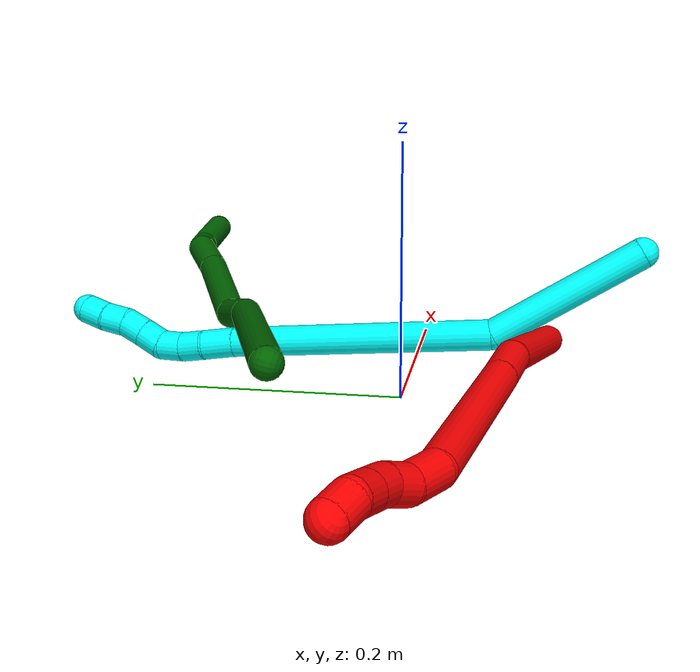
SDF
<sdf version="1.7">
 <world name="default">
  <model name="photoneo_s_sensor">
   <static>1</static>
   <pose>0 0 2 1.57079 1.57079 3.14159</pose>
   <link name="link">
    <inertial><mass>0.1</mass></inertial>
    <sensor name="sensor" type="depth">
     <update_rate>30</update_rate>
     <camera>
      <horizontal_fov>1.22</horizontal_fov>
      <image><width>1920</width><height>1200</height><format>B8G8R8</format></image>
      <clip><near>0.1</near><far>2</far></clip>
      <depth_camera><output>points</output></depth_camera>
     </camera>
     <plugin name="camera_plugin" filename="libgazebo_ros_depth_camera.so">
      <baseline>0.2</baseline>
      <alwaysOn>1</alwaysOn>
      <updateRate>0.0</updateRate>
      <cameraName>camera_ir</cameraName>
      <imageTopicName>/camera/color/image_raw</imageTopicName>
      <cameraInfoTopicName>/camera/color/camera_info</cameraInfoTopicName>
      <depthImageTopicName>/camera/depth/image_raw</depthImageTopicName>
      <depthImageCameraInfoTopicName>/camera/depth/camera_info</depthImageCameraInfoTopicName>
      <pointCloudTopicName>/camera/depth/points</pointCloudTopicName>
      <frameName>fr_optical</frameName>
      <pointCloudCutoff>0.1</pointCloudCutoff>
      <pointCloudCutoffMax>2.0</pointCloudCutoffMax>
      <distortionK1>0</distortionK1>
      <distortionK2>0</distortionK2>
      <distortionK3>0</distortionK3>
      <distortionT1>0</distortionT1>
      <distortionT2>0</distortionT2>
      <CxPrime>0</CxPrime>
      <Cx>0</Cx>
      <Cy>0</Cy>
      <focalLength>0</focalLength>
      <hackBaseline>0</hackBaseline>
     </plugin>
    </sensor>
   </link>
  </model>
  <model name="bin">
   <static>1</static>
   <link name="bottom">
    <collision name="collision-bottom">
     <pose>0 0 -0.01 0 -0 0</pose>
     <geometry><box><size>0.8 0.6 0.02</size></box></geometry>
     <surface>
      <friction><ode><mu>100</mu><mu2>100</mu2></ode></friction>
      <contact><collide_bitmask>65535</collide_bitmask></contact>
     </surface>
    </collision>
   </link>
   <link name="west_wall">
    <collision name="collision-west_wall">
     <pose>-0.41 0 0.1 0 -0 0</pose>
     <geometry><box><size>0.02 0.6 0.2</size></box></geometry>
     <surface>
      <friction><ode><mu>100</mu><mu2>100</mu2></ode></friction>
      <contact><collide_bitmask>65535</collide_bitmask></contact>
     </surface>
    </collision>
   </link>
   <link name="east_wall">
    <collision name="collision-east_wall">
     <pose>0.41 0 0.1 0 -0 0</pose>
     <geometry><box><size>0.02 0.6 0.2</size></box></geometry>
     <surface>
      <friction><ode><mu>100</mu><mu2>100</mu2></ode></friction>
      <contact><collide_bitmask>65535</collide_bitmask></contact>
     </surface>
    </collision>
   </link>
   <link name="south_wall">
    <collision name="collision-south_wall">
     <pose>0 -0.31 0.1 0 -0 0</pose>
     <geometry><box><size>0.8 0.02 0.2</size></box></geometry>
     <surface>
      <friction><ode><mu>100</mu><mu2>100</mu2></ode></friction>
      <contact><collide_bitmask>65535</collide_bitmask></contact>
     </surface>
    </collision>
   </link>
   <link name="north_wall">
    <collision name="collision-north_wall">
     <pose>0 0.31 0.1 0 -0 0</pose>
     <geometry><box><size>0.8 0.02 0.2</size></box></geometry>
     <surface>
      <friction><ode><mu>100</mu><mu2>100</mu2></ode></friction>
      <contact><collide_bitmask>65535</collide_bitmask></contact>
     </surface>
    </collision>
   </link>
  </model>
  <model name="2">
   <static>0</static>
   <link name="2">
    <collision name="collision-cylinder-e_1_1_4">
     <pose>-0.071743 -0.019403 0.045704 0.401486 -0.965406 -0.212469</pose>
     <geometry><cylinder><radius>0.0125</radius><length>0.174499</length></cylinder></geometry>
     <surface>
      <friction><ode><mu>1.16</mu><mu2>1.16</mu2><slip1>0</slip1><slip2>0</slip2></ode></friction>
      <contact><ode><kp>1e+06</kp><kd>1</kd><max_vel>0</max_vel><min_depth>0.001</min_depth></ode></contact>
     </surface>
    </collision>
    <visual name="visual-cylinder-e_1_1_4">
     <pose>-0.071743 -0.019403 0.045704 0.401486 -0.965406 -0.212469</pose>
     <geometry><cylinder><radius>0.0125</radius><length>0.174499</length></cylinder></geometry>
     <material><ambient>1 0 0 1</ambient></material>
    </visual>
    <collision name="collision-cylinder-e_2_4_5">
     <pose>-0.164236 -0.048469 0.101651 0.756243 -0.97455 -0.414928</pose>
     <geometry><cylinder><radius>0.0125</radius><length>0.050152</length></cylinder></geometry>
     <surface>
      <friction><ode><mu>1.16</mu><mu2>1.16</mu2><slip1>0</slip1><slip2>0</slip2></ode></friction>
      <contact><ode><kp>1e+06</kp><kd>1</kd><max_vel>0</max_vel><min_depth>0.001</min_depth></ode></contact>
     </surface>
    </collision>
    <visual name="visual-cylinder-e_2_4_5">
     <pose>-0.164236 -0.048469 0.101651 0.756243 -0.97455 -0.414928</pose>
     <geometry><cylinder><radius>0.0125</radius><length>0.050152</length></cylinder></geometry>
     <material><ambient>1 0 0 1</ambient></material>
    </visual>
    <collision name="collision-cylinder-e_3_5_6">
     <pose>-0.255069 -0.08991 0.143219 0.792581 -1.00384 -0.451436</pose>
     <geometry><cylinder><radius>0.0125</radius><length>0.166167</length></cylinder></geometry>
     <surface>
      <friction><ode><mu>1.16</mu><mu2>1.16</mu2><slip1>0</slip1><slip2>0</slip2></ode></friction>
      <contact><ode><kp>1e+06</kp><kd>1</kd><max_vel>0</max_vel><min_depth>0.001</min_depth></ode></contact>
     </surface>
    </collision>
    <visual name="visual-cylinder-e_3_5_6">
     <pose>-0.255069 -0.08991 0.143219 0.792581 -1.00384 -0.451436</pose>
     <geometry><cylinder><radius>0.0125</radius><length>0.166167</length></cylinder></geometry>
     <material><ambient>1 0 0 1</ambient></material>
    </visual>
    <collision name="collision-cylinder-e_4_6_7">
     <pose>-0.339154 -0.12413 0.176863 0.811052 -1.3347 -0.652401</pose>
     <geometry><cylinder><radius>0.0125</radius><length>0.0288</length></cylinder></geometry>
     <surface>
      <friction><ode><mu>1.16</mu><mu2>1.16</mu2><slip1>0</slip1><slip2>0</slip2></ode></friction>
      <contact><ode><kp>1e+06</kp><kd>1</kd><max_vel>0</max_vel><min_depth>0.001</min_depth></ode></contact>
     </surface>
    </collision>
    <visual name="visual-cylinder-e_4_6_7">
     <pose>-0.339154 -0.12413 0.176863 0.811052 -1.3347 -0.652401</pose>
     <geometry><cylinder><radius>0.0125</radius><length>0.0288</length></cylinder></geometry>
     <material><ambient>1 0 0 1</ambient></material>
    </visual>
    <collision name="collision-cylinder-e_5_7_8">
     <pose>-0.362784 -0.125233 0.182002 -0.443393 -1.25739 0.324898</pose>
     <geometry><cylinder><radius>0.0125</radius><length>0.020245</length></cylinder></geometry>
     <surface>
      <friction><ode><mu>1.16</mu><mu2>1.16</mu2><slip1>0</slip1><slip2>0</slip2></ode></friction>
      <contact><ode><kp>1e+06</kp><kd>1</kd><max_vel>0</max_vel><min_depth>0.001</min_depth></ode></contact>
     </surface>
    </collision>
    <visual name="visual-cylinder-e_5_7_8">
     <pose>-0.362784 -0.125233 0.182002 -0.443393 -1.25739 0.324898</pose>
     <geometry><cylinder><radius>0.0125</radius><length>0.020245</length></cylinder></geometry>
     <material><ambient>1 0 0 1</ambient></material>
    </visual>
    <collision name="collision-cylinder-e_6_8_9">
     <pose>-0.381548 -0.125429 0.18874 0.373136 -1.13915 -0.240588</pose>
     <geometry><cylinder><radius>0.0125</radius><length>0.020116</length></cylinder></geometry>
     <surface>
      <friction><ode><mu>1.16</mu><mu2>1.16</mu2><slip1>0</slip1><slip2>0</slip2></ode></friction>
      <contact><ode><kp>1e+06</kp><kd>1</kd><max_vel>0</max_vel><min_depth>0.001</min_depth></ode></contact>
     </surface>
    </collision>
    <visual name="visual-cylinder-e_6_8_9">
     <pose>-0.381548 -0.125429 0.18874 0.373136 -1.13915 -0.240588</pose>
     <geometry><cylinder><radius>0.0125</radius><length>0.020116</length></cylinder></geometry>
     <material><ambient>1 0 0 1</ambient></material>
    </visual>
    <collision name="collision-cylinder-e_7_9_10">
     <pose>-0.399549 -0.128591 0.196999 0.358864 -1.08893 -0.218784</pose>
     <geometry><cylinder><radius>0.0125</radius><length>0.020008</length></cylinder></geometry>
     <surface>
      <friction><ode><mu>1.16</mu><mu2>1.16</mu2><slip1>0</slip1><slip2>0</slip2></ode></friction>
      <contact><ode><kp>1e+06</kp><kd>1</kd><max_vel>0</max_vel><min_depth>0.001</min_depth></ode></contact>
     </surface>
    </collision>
    <visual name="visual-cylinder-e_7_9_10">
     <pose>-0.399549 -0.128591 0.196999 0.358864 -1.08893 -0.218784</pose>
     <geometry><cylinder><radius>0.0125</radius><length>0.020008</length></cylinder></geometry>
     <material><ambient>1 0 0 1</ambient></material>
    </visual>
    <collision name="collision-cylinder-e_8_10_2">
     <pose>-0.417678 -0.133895 0.202224 1.33468 -1.1833 -0.973857</pose>
     <geometry><cylinder><radius>0.0125</radius><length>0.020013</length></cylinder></geometry>
     <surface>
      <friction><ode><mu>1.16</mu><mu2>1.16</mu2><slip1>0</slip1><slip2>0</slip2></ode></friction>
      <contact><ode><kp>1e+06</kp><kd>1</kd><max_vel>0</max_vel><min_depth>0.001</min_depth></ode></contact>
     </surface>
    </collision>
    <visual name="visual-cylinder-e_8_10_2">
     <pose>-0.417678 -0.133895 0.202224 1.33468 -1.1833 -0.973857</pose>
     <geometry><cylinder><radius>0.0125</radius><length>0.020013</length></cylinder></geometry>
     <material><ambient>1 0 0 1</ambient></material>
    </visual>
    <collision name="collision-sphere-2">
     <pose>-0.426943 -0.137572 0.203109 0 -0 0</pose>
     <geometry><sphere><radius>0.0125</radius></sphere></geometry>
     <surface>
      <friction><ode><mu>1.16</mu><mu2>1.16</mu2><slip1>0</slip1><slip2>0</slip2></ode></friction>
      <contact><ode><kp>1e+06</kp><kd>1</kd><max_vel>0</max_vel><min_depth>0.001</min_depth></ode></contact>
     </surface>
    </collision>
    <visual name="visual-sphere-2">
     <pose>-0.426943 -0.137572 0.203109 0 -0 0</pose>
     <geometry><sphere><radius>0.0125</radius></sphere></geometry>
     <material><ambient>1 0 0 1</ambient></material>
    </visual>
    <collision name="collision-sphere-10">
     <pose>-0.408414 -0.130219 0.20134 0 -0 0</pose>
     <geometry><sphere><radius>0.0125</radius></sphere></geometry>
     <surface>
      <friction><ode><mu>1.16</mu><mu2>1.16</mu2><slip1>0</slip1><slip2>0</slip2></ode></friction>
      <contact><ode><kp>1e+06</kp><kd>1</kd><max_vel>0</max_vel><min_depth>0.001</min_depth></ode></contact>
     </surface>
    </collision>
    <visual name="visual-sphere-10">
     <pose>-0.408414 -0.130219 0.20134 0 -0 0</pose>
     <geometry><sphere><radius>0.0125</radius></sphere></geometry>
     <material><ambient>1 0 0 1</ambient></material>
    </visual>
    <collision name="collision-sphere-9">
     <pose>-0.390684 -0.126963 0.192658 0 -0 0</pose>
     <geometry><sphere><radius>0.0125</radius></sphere></geometry>
     <surface>
      <friction><ode><mu>1.16</mu><mu2>1.16</mu2><slip1>0</slip1><slip2>0</slip2></ode></friction>
      <contact><ode><kp>1e+06</kp><kd>1</kd><max_vel>0</max_vel><min_depth>0.001</min_depth></ode></contact>
     </surface>
    </collision>
    <visual name="visual-sphere-9">
     <pose>-0.390684 -0.126963 0.192658 0 -0 0</pose>
     <geometry><sphere><radius>0.0125</radius></sphere></geometry>
     <material><ambient>1 0 0 1</ambient></material>
    </visual>
    <collision name="collision-sphere-4">
     <pose>-0.143487 -0.038807 0.091408 0 -0 0</pose>
     <geometry><sphere><radius>0.0125</radius></sphere></geometry>
     <surface>
      <friction><ode><mu>1.16</mu><mu2>1.16</mu2><slip1>0</slip1><slip2>0</slip2></ode></friction>
      <contact><ode><kp>1e+06</kp><kd>1</kd><max_vel>0</max_vel><min_depth>0.001</min_depth></ode></contact>
     </surface>
    </collision>
    <visual name="visual-sphere-4">
     <pose>-0.143487 -0.038807 0.091408 0 -0 0</pose>
     <geometry><sphere><radius>0.0125</radius></sphere></geometry>
     <material><ambient>1 0 0 1</ambient></material>
    </visual>
    <collision name="collision-sphere-1">
     <geometry><sphere><radius>0.0125</radius></sphere></geometry>
     <surface>
      <friction><ode><mu>1.16</mu><mu2>1.16</mu2><slip1>0</slip1><slip2>0</slip2></ode></friction>
      <contact><ode><kp>1e+06</kp><kd>1</kd><max_vel>0</max_vel><min_depth>0.001</min_depth></ode></contact>
     </surface>
    </collision>
    <visual name="visual-sphere-1">
     <geometry><sphere><radius>0.0125</radius></sphere></geometry>
     <material><ambient>1 0 0 1</ambient></material>
    </visual>
    <collision name="collision-sphere-8">
     <pose>-0.372413 -0.123895 0.184821 0 -0 0</pose>
     <geometry><sphere><radius>0.0125</radius></sphere></geometry>
     <surface>
      <friction><ode><mu>1.16</mu><mu2>1.16</mu2><slip1>0</slip1><slip2>0</slip2></ode></friction>
      <contact><ode><kp>1e+06</kp><kd>1</kd><max_vel>0</max_vel><min_depth>0.001</min_depth></ode></contact>
     </surface>
    </collision>
    <visual name="visual-sphere-8">
     <pose>-0.372413 -0.123895 0.184821 0 -0 0</pose>
     <geometry><sphere><radius>0.0125</radius></sphere></geometry>
     <material><ambient>1 0 0 1</ambient></material>
    </visual>
    <collision name="collision-sphere-5">
     <pose>-0.184985 -0.058132 0.111894 0 -0 0</pose>
     <geometry><sphere><radius>0.0125</radius></sphere></geometry>
     <surface>
      <friction><ode><mu>1.16</mu><mu2>1.16</mu2><slip1>0</slip1><slip2>0</slip2></ode></friction>
      <contact><ode><kp>1e+06</kp><kd>1</kd><max_vel>0</max_vel><min_depth>0.001</min_depth></ode></contact>
     </surface>
    </collision>
    <visual name="visual-sphere-5">
     <pose>-0.184985 -0.058132 0.111894 0 -0 0</pose>
     <geometry><sphere><radius>0.0125</radius></sphere></geometry>
     <material><ambient>1 0 0 1</ambient></material>
    </visual>
    <collision name="collision-sphere-6">
     <pose>-0.325153 -0.121688 0.174544 0 -0 0</pose>
     <geometry><sphere><radius>0.0125</radius></sphere></geometry>
     <surface>
      <friction><ode><mu>1.16</mu><mu2>1.16</mu2><slip1>0</slip1><slip2>0</slip2></ode></friction>
      <contact><ode><kp>1e+06</kp><kd>1</kd><max_vel>0</max_vel><min_depth>0.001</min_depth></ode></contact>
     </surface>
    </collision>
    <visual name="visual-sphere-6">
     <pose>-0.325153 -0.121688 0.174544 0 -0 0</pose>
     <geometry><sphere><radius>0.0125</radius></sphere></geometry>
     <material><ambient>1 0 0 1</ambient></material>
    </visual>
    <collision name="collision-sphere-7">
     <pose>-0.353155 -0.126572 0.179183 0 -0 0</pose>
     <geometry><sphere><radius>0.0125</radius></sphere></geometry>
     <surface>
      <friction><ode><mu>1.16</mu><mu2>1.16</mu2><slip1>0</slip1><slip2>0</slip2></ode></friction>
      <contact><ode><kp>1e+06</kp><kd>1</kd><max_vel>0</max_vel><min_depth>0.001</min_depth></ode></contact>
     </surface>
    </collision>
    <visual name="visual-sphere-7">
     <pose>-0.353155 -0.126572 0.179183 0 -0 0</pose>
     <geometry><sphere><radius>0.0125</radius></sphere></geometry>
     <material><ambient>1 0 0 1</ambient></material>
    </visual>
    <inertial>
     <pose>-0.208561 -0.069285 0.11487 0 -0 0</pose>
     <mass>0.5</mass>
     <inertia>
      <ixx>0.000265</ixx>
      <ixy>0</ixy>
      <ixz>0</ixz>
      <iyy>0.000643</iyy>
      <iyz>0</iyz>
      <izz>0.000987</izz>
     </inertia>
    </inertial>
   </link>
   <pose>0.1214 -0.111705 0.016989 0.851745 0.026877 -0.733992</pose>
  </model>
  <model name="3">
   <static>0</static>
   <link name="3">
    <collision name="collision-cylinder-e_1_1_4">
     <pose>0.025309 0.06113 0.012876 -1.3632 0.384919 -0.313607</pose>
     <geometry><cylinder><radius>0.0125</radius><length>0.134806</length></cylinder></geometry>
     <surface>
      <friction><ode><mu>1.16</mu><mu2>1.16</mu2><slip1>0</slip1><slip2>0</slip2></ode></friction>
      <contact><ode><kp>1e+06</kp><kd>1</kd><max_vel>0</max_vel><min_depth>0.001</min_depth></ode></contact>
     </surface>
    </collision>
    <visual name="visual-cylinder-e_1_1_4">
     <pose>0.025309 0.06113 0.012876 -1.3632 0.384919 -0.313607</pose>
     <geometry><cylinder><radius>0.0125</radius><length>0.134806</length></cylinder></geometry>
     <material><ambient>0.003922 1 0.996078 1</ambient></material>
    </visual>
    <collision name="collision-cylinder-e_2_4_5">
     <pose>0.07004 0.226591 0.000896 -1.80467 0.179153 -0.226483</pose>
     <geometry><cylinder><radius>0.0125</radius><length>0.217991</length></cylinder></geometry>
     <surface>
      <friction><ode><mu>1.16</mu><mu2>1.16</mu2><slip1>0</slip1><slip2>0</slip2></ode></friction>
      <contact><ode><kp>1e+06</kp><kd>1</kd><max_vel>0</max_vel><min_depth>0.001</min_depth></ode></contact>
     </surface>
    </collision>
    <visual name="visual-cylinder-e_2_4_5">
     <pose>0.07004 0.226591 0.000896 -1.80467 0.179153 -0.226483</pose>
     <geometry><cylinder><radius>0.0125</radius><length>0.217991</length></cylinder></geometry>
     <material><ambient>0.003922 1 0.996078 1</ambient></material>
    </visual>
    <collision name="collision-cylinder-e_3_5_6">
     <pose>0.092495 0.34393 -0.026343 -1.7521 0.225404 -0.26998</pose>
     <geometry><cylinder><radius>0.0125</radius><length>0.027135</length></cylinder></geometry>
     <surface>
      <friction><ode><mu>1.16</mu><mu2>1.16</mu2><slip1>0</slip1><slip2>0</slip2></ode></friction>
      <contact><ode><kp>1e+06</kp><kd>1</kd><max_vel>0</max_vel><min_depth>0.001</min_depth></ode></contact>
     </surface>
    </collision>
    <visual name="visual-cylinder-e_3_5_6">
     <pose>0.092495 0.34393 -0.026343 -1.7521 0.225404 -0.26998</pose>
     <geometry><cylinder><radius>0.0125</radius><length>0.027135</length></cylinder></geometry>
     <material><ambient>0.003922 1 0.996078 1</ambient></material>
    </visual>
    <collision name="collision-cylinder-e_4_6_7">
     <pose>0.096195 0.366852 -0.029933 -1.69173 0.066785 -0.075385</pose>
     <geometry><cylinder><radius>0.0125</radius><length>0.020021</length></cylinder></geometry>
     <surface>
      <friction><ode><mu>1.16</mu><mu2>1.16</mu2><slip1>0</slip1><slip2>0</slip2></ode></friction>
      <contact><ode><kp>1e+06</kp><kd>1</kd><max_vel>0</max_vel><min_depth>0.001</min_depth></ode></contact>
     </surface>
    </collision>
    <visual name="visual-cylinder-e_4_6_7">
     <pose>0.096195 0.366852 -0.029933 -1.69173 0.066785 -0.075385</pose>
     <geometry><cylinder><radius>0.0125</radius><length>0.020021</length></cylinder></geometry>
     <material><ambient>0.003922 1 0.996078 1</ambient></material>
    </visual>
    <collision name="collision-cylinder-e_5_7_8">
     <pose>0.097584 0.386288 -0.034114 -1.87377 0.072116 -0.098066</pose>
     <geometry><cylinder><radius>0.0125</radius><length>0.020002</length></cylinder></geometry>
     <surface>
      <friction><ode><mu>1.16</mu><mu2>1.16</mu2><slip1>0</slip1><slip2>0</slip2></ode></friction>
      <contact><ode><kp>1e+06</kp><kd>1</kd><max_vel>0</max_vel><min_depth>0.001</min_depth></ode></contact>
     </surface>
    </collision>
    <visual name="visual-cylinder-e_5_7_8">
     <pose>0.097584 0.386288 -0.034114 -1.87377 0.072116 -0.098066</pose>
     <geometry><cylinder><radius>0.0125</radius><length>0.020002</length></cylinder></geometry>
     <material><ambient>0.003922 1 0.996078 1</ambient></material>
    </visual>
    <collision name="collision-cylinder-e_6_8_9">
     <pose>0.096642 0.403481 -0.043291 -2.25055 -0.166929 0.346854</pose>
     <geometry><cylinder><radius>0.0125</radius><length>0.020009</length></cylinder></geometry>
     <surface>
      <friction><ode><mu>1.16</mu><mu2>1.16</mu2><slip1>0</slip1><slip2>0</slip2></ode></friction>
      <contact><ode><kp>1e+06</kp><kd>1</kd><max_vel>0</max_vel><min_depth>0.001</min_depth></ode></contact>
     </surface>
    </collision>
    <visual name="visual-cylinder-e_6_8_9">
     <pose>0.096642 0.403481 -0.043291 -2.25055 -0.166929 0.346854</pose>
     <geometry><cylinder><radius>0.0125</radius><length>0.020009</length></cylinder></geometry>
     <material><ambient>0.003922 1 0.996078 1</ambient></material>
    </visual>
    <collision name="collision-cylinder-e_7_9_10">
     <pose>0.09394 0.41886 -0.055803 -2.25696 -0.104011 0.218929</pose>
     <geometry><cylinder><radius>0.0125</radius><length>0.02003</length></cylinder></geometry>
     <surface>
      <friction><ode><mu>1.16</mu><mu2>1.16</mu2><slip1>0</slip1><slip2>0</slip2></ode></friction>
      <contact><ode><kp>1e+06</kp><kd>1</kd><max_vel>0</max_vel><min_depth>0.001</min_depth></ode></contact>
     </surface>
    </collision>
    <visual name="visual-cylinder-e_7_9_10">
     <pose>0.09394 0.41886 -0.055803 -2.25696 -0.104011 0.218929</pose>
     <geometry><cylinder><radius>0.0125</radius><length>0.02003</length></cylinder></geometry>
     <material><ambient>0.003922 1 0.996078 1</ambient></material>
    </visual>
    <collision name="collision-cylinder-e_8_10_11">
     <pose>0.093533 0.435383 -0.066795 -2.05881 0.063277 -0.105168</pose>
     <geometry><cylinder><radius>0.0125</radius><length>0.020005</length></cylinder></geometry>
     <surface>
      <friction><ode><mu>1.16</mu><mu2>1.16</mu2><slip1>0</slip1><slip2>0</slip2></ode></friction>
      <contact><ode><kp>1e+06</kp><kd>1</kd><max_vel>0</max_vel><min_depth>0.001</min_depth></ode></contact>
     </surface>
    </collision>
    <visual name="visual-cylinder-e_8_10_11">
     <pose>0.093533 0.435383 -0.066795 -2.05881 0.063277 -0.105168</pose>
     <geometry><cylinder><radius>0.0125</radius><length>0.020005</length></cylinder></geometry>
     <material><ambient>0.003922 1 0.996078 1</ambient></material>
    </visual>
    <collision name="collision-cylinder-e_9_11_2">
     <pose>0.09329 0.452741 -0.076606 -2.11175 -0.087708 0.154795</pose>
     <geometry><cylinder><radius>0.0125</radius><length>0.020002</length></cylinder></geometry>
     <surface>
      <friction><ode><mu>1.16</mu><mu2>1.16</mu2><slip1>0</slip1><slip2>0</slip2></ode></friction>
      <contact><ode><kp>1e+06</kp><kd>1</kd><max_vel>0</max_vel><min_depth>0.001</min_depth></ode></contact>
     </surface>
    </collision>
    <visual name="visual-cylinder-e_9_11_2">
     <pose>0.09329 0.452741 -0.076606 -2.11175 -0.087708 0.154795</pose>
     <geometry><cylinder><radius>0.0125</radius><length>0.020002</length></cylinder></geometry>
     <material><ambient>0.003922 1 0.996078 1</ambient></material>
    </visual>
    <collision name="collision-sphere-2">
     <pose>0.092414 0.461281 -0.081736 0 -0 0</pose>
     <geometry><sphere><radius>0.0125</radius></sphere></geometry>
     <surface>
      <friction><ode><mu>1.16</mu><mu2>1.16</mu2><slip1>0</slip1><slip2>0</slip2></ode></friction>
      <contact><ode><kp>1e+06</kp><kd>1</kd><max_vel>0</max_vel><min_depth>0.001</min_depth></ode></contact>
     </surface>
    </collision>
    <visual name="visual-sphere-2">
     <pose>0.092414 0.461281 -0.081736 0 -0 0</pose>
     <geometry><sphere><radius>0.0125</radius></sphere></geometry>
     <material><ambient>0.003922 1 0.996078 1</ambient></material>
    </visual>
    <collision name="collision-sphere-11">
     <pose>0.094166 0.4442 -0.071475 0 -0 0</pose>
     <geometry><sphere><radius>0.0125</radius></sphere></geometry>
     <surface>
      <friction><ode><mu>1.16</mu><mu2>1.16</mu2><slip1>0</slip1><slip2>0</slip2></ode></friction>
      <contact><ode><kp>1e+06</kp><kd>1</kd><max_vel>0</max_vel><min_depth>0.001</min_depth></ode></contact>
     </surface>
    </collision>
    <visual name="visual-sphere-11">
     <pose>0.094166 0.4442 -0.071475 0 -0 0</pose>
     <geometry><sphere><radius>0.0125</radius></sphere></geometry>
     <material><ambient>0.003922 1 0.996078 1</ambient></material>
    </visual>
    <collision name="collision-sphere-10">
     <pose>0.092901 0.426566 -0.062114 0 -0 0</pose>
     <geometry><sphere><radius>0.0125</radius></sphere></geometry>
     <surface>
      <friction><ode><mu>1.16</mu><mu2>1.16</mu2><slip1>0</slip1><slip2>0</slip2></ode></friction>
      <contact><ode><kp>1e+06</kp><kd>1</kd><max_vel>0</max_vel><min_depth>0.001</min_depth></ode></contact>
     </surface>
    </collision>
    <visual name="visual-sphere-10">
     <pose>0.092901 0.426566 -0.062114 0 -0 0</pose>
     <geometry><sphere><radius>0.0125</radius></sphere></geometry>
     <material><ambient>0.003922 1 0.996078 1</ambient></material>
    </visual>
    <collision name="collision-sphere-9">
     <pose>0.09498 0.411153 -0.049492 0 -0 0</pose>
     <geometry><sphere><radius>0.0125</radius></sphere></geometry>
     <surface>
      <friction><ode><mu>1.16</mu><mu2>1.16</mu2><slip1>0</slip1><slip2>0</slip2></ode></friction>
      <contact><ode><kp>1e+06</kp><kd>1</kd><max_vel>0</max_vel><min_depth>0.001</min_depth></ode></contact>
     </surface>
    </collision>
    <visual name="visual-sphere-9">
     <pose>0.09498 0.411153 -0.049492 0 -0 0</pose>
     <geometry><sphere><radius>0.0125</radius></sphere></geometry>
     <material><ambient>0.003922 1 0.996078 1</ambient></material>
    </visual>
    <collision name="collision-sphere-4">
     <pose>0.050618 0.12226 0.025752 0 -0 0</pose>
     <geometry><sphere><radius>0.0125</radius></sphere></geometry>
     <surface>
      <friction><ode><mu>1.16</mu><mu2>1.16</mu2><slip1>0</slip1><slip2>0</slip2></ode></friction>
      <contact><ode><kp>1e+06</kp><kd>1</kd><max_vel>0</max_vel><min_depth>0.001</min_depth></ode></contact>
     </surface>
    </collision>
    <visual name="visual-sphere-4">
     <pose>0.050618 0.12226 0.025752 0 -0 0</pose>
     <geometry><sphere><radius>0.0125</radius></sphere></geometry>
     <material><ambient>0.003922 1 0.996078 1</ambient></material>
    </visual>
    <collision name="collision-sphere-1">
     <geometry><sphere><radius>0.0125</radius></sphere></geometry>
     <surface>
      <friction><ode><mu>1.16</mu><mu2>1.16</mu2><slip1>0</slip1><slip2>0</slip2></ode></friction>
      <contact><ode><kp>1e+06</kp><kd>1</kd><max_vel>0</max_vel><min_depth>0.001</min_depth></ode></contact>
     </surface>
    </collision>
    <visual name="visual-sphere-1">
     <geometry><sphere><radius>0.0125</radius></sphere></geometry>
     <material><ambient>0.003922 1 0.996078 1</ambient></material>
    </visual>
    <collision name="collision-sphere-8">
     <pose>0.098305 0.395808 -0.03709 0 -0 0</pose>
     <geometry><sphere><radius>0.0125</radius></sphere></geometry>
     <surface>
      <friction><ode><mu>1.16</mu><mu2>1.16</mu2><slip1>0</slip1><slip2>0</slip2></ode></friction>
      <contact><ode><kp>1e+06</kp><kd>1</kd><max_vel>0</max_vel><min_depth>0.001</min_depth></ode></contact>
     </surface>
    </collision>
    <visual name="visual-sphere-8">
     <pose>0.098305 0.395808 -0.03709 0 -0 0</pose>
     <geometry><sphere><radius>0.0125</radius></sphere></geometry>
     <material><ambient>0.003922 1 0.996078 1</ambient></material>
    </visual>
    <collision name="collision-sphere-5">
     <pose>0.089463 0.330923 -0.023959 0 -0 0</pose>
     <geometry><sphere><radius>0.0125</radius></sphere></geometry>
     <surface>
      <friction><ode><mu>1.16</mu><mu2>1.16</mu2><slip1>0</slip1><slip2>0</slip2></ode></friction>
      <contact><ode><kp>1e+06</kp><kd>1</kd><max_vel>0</max_vel><min_depth>0.001</min_depth></ode></contact>
     </surface>
    </collision>
    <visual name="visual-sphere-5">
     <pose>0.089463 0.330923 -0.023959 0 -0 0</pose>
     <geometry><sphere><radius>0.0125</radius></sphere></geometry>
     <material><ambient>0.003922 1 0.996078 1</ambient></material>
    </visual>
    <collision name="collision-sphere-6">
     <pose>0.095527 0.356937 -0.028728 0 -0 0</pose>
     <geometry><sphere><radius>0.0125</radius></sphere></geometry>
     <surface>
      <friction><ode><mu>1.16</mu><mu2>1.16</mu2><slip1>0</slip1><slip2>0</slip2></ode></friction>
      <contact><ode><kp>1e+06</kp><kd>1</kd><max_vel>0</max_vel><min_depth>0.001</min_depth></ode></contact>
     </surface>
    </collision>
    <visual name="visual-sphere-6">
     <pose>0.095527 0.356937 -0.028728 0 -0 0</pose>
     <geometry><sphere><radius>0.0125</radius></sphere></geometry>
     <material><ambient>0.003922 1 0.996078 1</ambient></material>
    </visual>
    <collision name="collision-sphere-7">
     <pose>0.096864 0.376767 -0.031138 0 -0 0</pose>
     <geometry><sphere><radius>0.0125</radius></sphere></geometry>
     <surface>
      <friction><ode><mu>1.16</mu><mu2>1.16</mu2><slip1>0</slip1><slip2>0</slip2></ode></friction>
      <contact><ode><kp>1e+06</kp><kd>1</kd><max_vel>0</max_vel><min_depth>0.001</min_depth></ode></contact>
     </surface>
    </collision>
    <visual name="visual-sphere-7">
     <pose>0.096864 0.376767 -0.031138 0 -0 0</pose>
     <geometry><sphere><radius>0.0125</radius></sphere></geometry>
     <material><ambient>0.003922 1 0.996078 1</ambient></material>
    </visual>
    <inertial>
     <pose>0.06524 0.232535 -0.009835 0 -0 0</pose>
     <mass>0.5</mass>
     <inertia>
      <ixx>0.000786</ixx>
      <ixy>0</ixy>
      <ixz>0</ixz>
      <iyy>-0.000319</iyy>
      <iyz>0</iyz>
      <izz>-0.001275</izz>
     </inertia>
    </inertial>
   </link>
   <pose>0.065309 -0.183037 0.107703 -2.84349 0.169358 2.91091</pose>
  </model>
  <model name="6">
   <static>0</static>
   <link name="6">
    <collision name="collision-cylinder-e_1_1_4">
     <pose>0.091462 0.002191 0.025394 -0.086083 1.29901 -0.065391</pose>
     <geometry><cylinder><radius>0.0125</radius><length>0.189894</length></cylinder></geometry>
     <surface>
      <friction><ode><mu>1.16</mu><mu2>1.16</mu2><slip1>0</slip1><slip2>0</slip2></ode></friction>
      <contact><ode><kp>1e+06</kp><kd>1</kd><max_vel>0</max_vel><min_depth>0.001</min_depth></ode></contact>
     </surface>
    </collision>
    <visual name="visual-cylinder-e_1_1_4">
     <pose>0.091462 0.002191 0.025394 -0.086083 1.29901 -0.065391</pose>
     <geometry><cylinder><radius>0.0125</radius><length>0.189894</length></cylinder></geometry>
     <material><ambient>0 0.392157 0.003922 1</ambient></material>
    </visual>
    <collision name="collision-cylinder-e_2_4_5">
     <pose>0.204047 0.009951 0.060507 -0.520334 1.08325 -0.317617</pose>
     <geometry><cylinder><radius>0.0125</radius><length>0.047818</length></cylinder></geometry>
     <surface>
      <friction><ode><mu>1.16</mu><mu2>1.16</mu2><slip1>0</slip1><slip2>0</slip2></ode></friction>
      <contact><ode><kp>1e+06</kp><kd>1</kd><max_vel>0</max_vel><min_depth>0.001</min_depth></ode></contact>
     </surface>
    </collision>
    <visual name="visual-cylinder-e_2_4_5">
     <pose>0.204047 0.009951 0.060507 -0.520334 1.08325 -0.317617</pose>
     <geometry><cylinder><radius>0.0125</radius><length>0.047818</length></cylinder></geometry>
     <material><ambient>0 0.392157 0.003922 1</ambient></material>
    </visual>
    <collision name="collision-cylinder-e_3_5_6">
     <pose>0.277244 0.006251 0.092616 0.392487 1.13522 0.252169</pose>
     <geometry><cylinder><radius>0.0125</radius><length>0.114874</length></cylinder></geometry>
     <surface>
      <friction><ode><mu>1.16</mu><mu2>1.16</mu2><slip1>0</slip1><slip2>0</slip2></ode></friction>
      <contact><ode><kp>1e+06</kp><kd>1</kd><max_vel>0</max_vel><min_depth>0.001</min_depth></ode></contact>
     </surface>
    </collision>
    <visual name="visual-cylinder-e_3_5_6">
     <pose>0.277244 0.006251 0.092616 0.392487 1.13522 0.252169</pose>
     <geometry><cylinder><radius>0.0125</radius><length>0.114874</length></cylinder></geometry>
     <material><ambient>0 0.392157 0.003922 1</ambient></material>
    </visual>
    <collision name="collision-cylinder-e_4_6_7">
     <pose>0.351486 -0.007453 0.127263 0.347209 1.03932 0.199993</pose>
     <geometry><cylinder><radius>0.0125</radius><length>0.051429</length></cylinder></geometry>
     <surface>
      <friction><ode><mu>1.16</mu><mu2>1.16</mu2><slip1>0</slip1><slip2>0</slip2></ode></friction>
      <contact><ode><kp>1e+06</kp><kd>1</kd><max_vel>0</max_vel><min_depth>0.001</min_depth></ode></contact>
     </surface>
    </collision>
    <visual name="visual-cylinder-e_4_6_7">
     <pose>0.351486 -0.007453 0.127263 0.347209 1.03932 0.199993</pose>
     <geometry><cylinder><radius>0.0125</radius><length>0.051429</length></cylinder></geometry>
     <material><ambient>0 0.392157 0.003922 1</ambient></material>
    </visual>
    <collision name="collision-cylinder-e_5_7_8">
     <pose>0.388487 -0.011663 0.141912 -0.09339 1.41007 -0.079485</pose>
     <geometry><cylinder><radius>0.0125</radius><length>0.030055</length></cylinder></geometry>
     <surface>
      <friction><ode><mu>1.16</mu><mu2>1.16</mu2><slip1>0</slip1><slip2>0</slip2></ode></friction>
      <contact><ode><kp>1e+06</kp><kd>1</kd><max_vel>0</max_vel><min_depth>0.001</min_depth></ode></contact>
     </surface>
    </collision>
    <visual name="visual-cylinder-e_5_7_8">
     <pose>0.388487 -0.011663 0.141912 -0.09339 1.41007 -0.079485</pose>
     <geometry><cylinder><radius>0.0125</radius><length>0.030055</length></cylinder></geometry>
     <material><ambient>0 0.392157 0.003922 1</ambient></material>
    </visual>
    <collision name="collision-cylinder-e_6_8_2">
     <pose>0.435588 -0.018081 0.145501 1.39278 1.36463 1.19347</pose>
     <geometry><cylinder><radius>0.0125</radius><length>0.06593</length></cylinder></geometry>
     <surface>
      <friction><ode><mu>1.16</mu><mu2>1.16</mu2><slip1>0</slip1><slip2>0</slip2></ode></friction>
      <contact><ode><kp>1e+06</kp><kd>1</kd><max_vel>0</max_vel><min_depth>0.001</min_depth></ode></contact>
     </surface>
    </collision>
    <visual name="visual-cylinder-e_6_8_2">
     <pose>0.435588 -0.018081 0.145501 1.39278 1.36463 1.19347</pose>
     <geometry><cylinder><radius>0.0125</radius><length>0.06593</length></cylinder></geometry>
     <material><ambient>0 0.392157 0.003922 1</ambient></material>
    </visual>
    <collision name="collision-sphere-2">
     <pose>0.467854 -0.024722 0.146696 0 -0 0</pose>
     <geometry><sphere><radius>0.0125</radius></sphere></geometry>
     <surface>
      <friction><ode><mu>1.16</mu><mu2>1.16</mu2><slip1>0</slip1><slip2>0</slip2></ode></friction>
      <contact><ode><kp>1e+06</kp><kd>1</kd><max_vel>0</max_vel><min_depth>0.001</min_depth></ode></contact>
     </surface>
    </collision>
    <visual name="visual-sphere-2">
     <pose>0.467854 -0.024722 0.146696 0 -0 0</pose>
     <geometry><sphere><radius>0.0125</radius></sphere></geometry>
     <material><ambient>0 0.392157 0.003922 1</ambient></material>
    </visual>
    <collision name="collision-sphere-4">
     <pose>0.182923 0.004383 0.050788 0 -0 0</pose>
     <geometry><sphere><radius>0.0125</radius></sphere></geometry>
     <surface>
      <friction><ode><mu>1.16</mu><mu2>1.16</mu2><slip1>0</slip1><slip2>0</slip2></ode></friction>
      <contact><ode><kp>1e+06</kp><kd>1</kd><max_vel>0</max_vel><min_depth>0.001</min_depth></ode></contact>
     </surface>
    </collision>
    <visual name="visual-sphere-4">
     <pose>0.182923 0.004383 0.050788 0 -0 0</pose>
     <geometry><sphere><radius>0.0125</radius></sphere></geometry>
     <material><ambient>0 0.392157 0.003922 1</ambient></material>
    </visual>
    <collision name="collision-sphere-1">
     <geometry><sphere><radius>0.0125</radius></sphere></geometry>
     <surface>
      <friction><ode><mu>1.16</mu><mu2>1.16</mu2><slip1>0</slip1><slip2>0</slip2></ode></friction>
      <contact><ode><kp>1e+06</kp><kd>1</kd><max_vel>0</max_vel><min_depth>0.001</min_depth></ode></contact>
     </surface>
    </collision>
    <visual name="visual-sphere-1">
     <geometry><sphere><radius>0.0125</radius></sphere></geometry>
     <material><ambient>0 0.392157 0.003922 1</ambient></material>
    </visual>
    <collision name="collision-sphere-8">
     <pose>0.403321 -0.011439 0.144306 0 -0 0</pose>
     <geometry><sphere><radius>0.0125</radius></sphere></geometry>
     <surface>
      <friction><ode><mu>1.16</mu><mu2>1.16</mu2><slip1>0</slip1><slip2>0</slip2></ode></friction>
      <contact><ode><kp>1e+06</kp><kd>1</kd><max_vel>0</max_vel><min_depth>0.001</min_depth></ode></contact>
     </surface>
    </collision>
    <visual name="visual-sphere-8">
     <pose>0.403321 -0.011439 0.144306 0 -0 0</pose>
     <geometry><sphere><radius>0.0125</radius></sphere></geometry>
     <material><ambient>0 0.392157 0.003922 1</ambient></material>
    </visual>
    <collision name="collision-sphere-5">
     <pose>0.22517 0.01552 0.070225 0 -0 0</pose>
     <geometry><sphere><radius>0.0125</radius></sphere></geometry>
     <surface>
      <friction><ode><mu>1.16</mu><mu2>1.16</mu2><slip1>0</slip1><slip2>0</slip2></ode></friction>
      <contact><ode><kp>1e+06</kp><kd>1</kd><max_vel>0</max_vel><min_depth>0.001</min_depth></ode></contact>
     </surface>
    </collision>
    <visual name="visual-sphere-5">
     <pose>0.22517 0.01552 0.070225 0 -0 0</pose>
     <geometry><sphere><radius>0.0125</radius></sphere></geometry>
     <material><ambient>0 0.392157 0.003922 1</ambient></material>
    </visual>
    <collision name="collision-sphere-6">
     <pose>0.329319 -0.003019 0.115008 0 -0 0</pose>
     <geometry><sphere><radius>0.0125</radius></sphere></geometry>
     <surface>
      <friction><ode><mu>1.16</mu><mu2>1.16</mu2><slip1>0</slip1><slip2>0</slip2></ode></friction>
      <contact><ode><kp>1e+06</kp><kd>1</kd><max_vel>0</max_vel><min_depth>0.001</min_depth></ode></contact>
     </surface>
    </collision>
    <visual name="visual-sphere-6">
     <pose>0.329319 -0.003019 0.115008 0 -0 0</pose>
     <geometry><sphere><radius>0.0125</radius></sphere></geometry>
     <material><ambient>0 0.392157 0.003922 1</ambient></material>
    </visual>
    <collision name="collision-sphere-7">
     <pose>0.373653 -0.011888 0.139517 0 -0 0</pose>
     <geometry><sphere><radius>0.0125</radius></sphere></geometry>
     <surface>
      <friction><ode><mu>1.16</mu><mu2>1.16</mu2><slip1>0</slip1><slip2>0</slip2></ode></friction>
      <contact><ode><kp>1e+06</kp><kd>1</kd><max_vel>0</max_vel><min_depth>0.001</min_depth></ode></contact>
     </surface>
    </collision>
    <visual name="visual-sphere-7">
     <pose>0.373653 -0.011888 0.139517 0 -0 0</pose>
     <geometry><sphere><radius>0.0125</radius></sphere></geometry>
     <material><ambient>0 0.392157 0.003922 1</ambient></material>
    </visual>
    <inertial>
     <pose>0.234888 -0.000632 0.077515 0 -0 0</pose>
     <mass>0.5</mass>
     <inertia>
      <ixx>0.000267</ixx>
      <ixy>0</ixy>
      <ixz>0</ixz>
      <iyy>0.000765</iyy>
      <iyz>0</iyz>
      <izz>-0.000702</izz>
     </inertia>
    </inertial>
   </link>
   <pose>-0.12612 0.076857 0.063165 -1.31885 0.129134 0.048346</pose>
  </model>
 </world>
</sdf>
